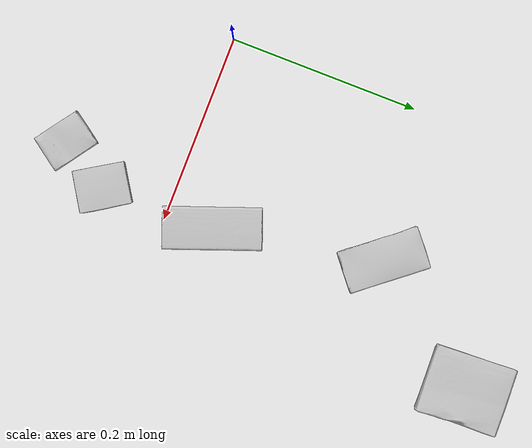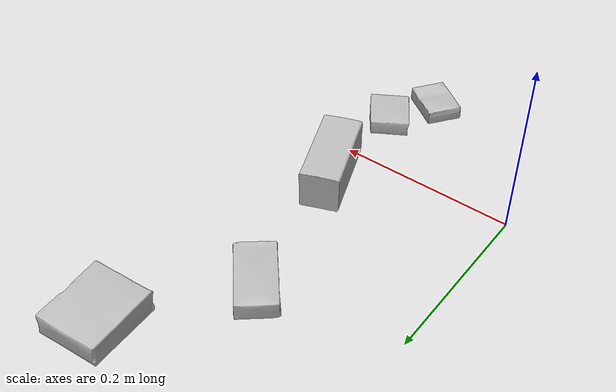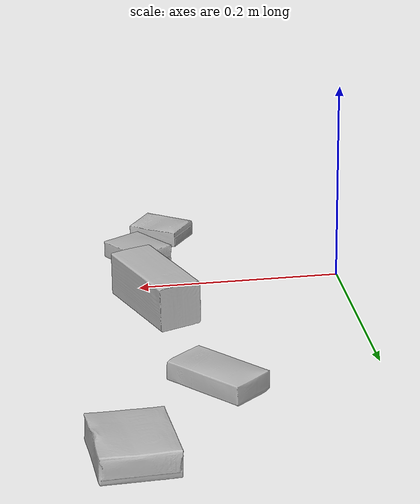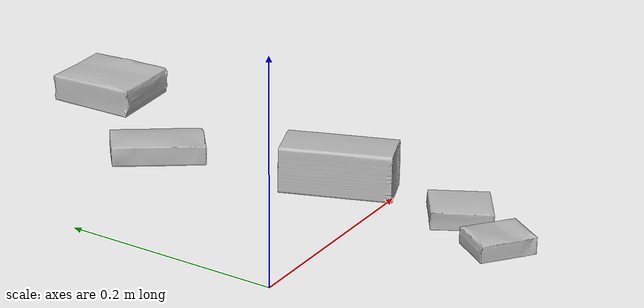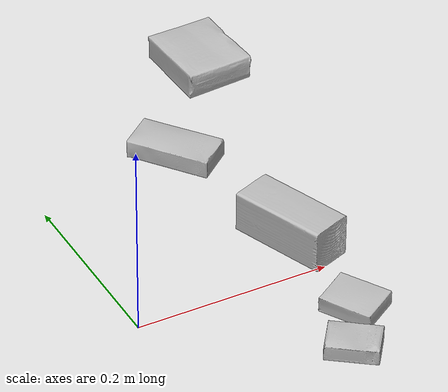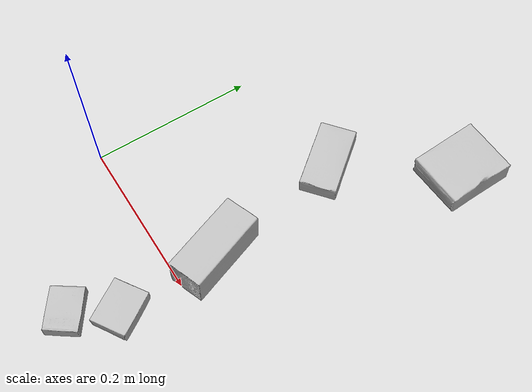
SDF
<sdf version="1.4">
  <world name="default">
    <light name="light1" type="point">
      <pose>0 0 1 0 0 0</pose>
      <diffuse>3 3 3 1</diffuse>
      <specular>3 3 3 1</specular>
    </light>
    <light name="light2" type="point">
      <pose>0 0.5 2 0 0 0</pose>
      <diffuse>1 1 1 1</diffuse>
      <specular>1 1 1 1</specular>
    </light>
    <light name="light3" type="point">
      <pose>0 0.5 2 0 0 0</pose>
      <diffuse>3 3 3 1</diffuse>
      <specular>3 3 3 1</specular>
    </light>
    <scene>
      <ambient>0.7 0.7 0.7</ambient>
    </scene>
    <model name="box1">
      <link name="link_box1">
        <collision name="default">
          <geometry>
            <mesh>
              <uri>model://gelatin_box/collision_meshes/collision.obj</uri>
              <scale>1.0 1.0 1.0</scale>
            </mesh>
          </geometry>
          <surface>
            <friction>
              <ode>
                <mu>0.5</mu>
                <mu2>0.5</mu2>
              </ode>
            </friction>
          <contact>
        <ode>
            <max_vel>0</max_vel>
            <min_depth>0.0001</min_depth>
            <kp>1e8</kp>
        </ode>
    </contact></surface>
        </collision>
        <visual name="default">
          <geometry>
            <mesh>
              <uri>model://gelatin_box/visual_meshes/visual.dae</uri>
              <scale>1.0 1.0 1.0</scale>
            </mesh>
          </geometry>
        </visual>
        <inertial>
          <mass>0.2001359760761261</mass>
          <pose>0.0004319618456065655 0.00011156872642459348 -0.00036403213744051754 -0.0010503718728910522 -0.00475581915504666 0.01644056319729456</pose>
          <inertia>
            <ixx>0.00014127967</ixx>
            <iyy>0.00010091532</iyy>
            <izz>0.00021505913</izz>
            <ixy>0</ixy>
            <ixz>0</ixz>
            <iyz>0</iyz>
          </inertia>
        </inertial>
      </link>
      <pose>0.25131744146347046 0.3534163534641266 0.015168310143053532 0.005597378203026951 -0.007304462127211079 0.034879489842786195</pose>
    </model>
    <model name="box2">
      <link name="link_box2">
        <collision name="default">
          <geometry>
            <mesh>
              <uri>model://cracker_box/collision_meshes/collision.obj</uri>
              <scale>0.25 0.25 0.25</scale>
            </mesh>
          </geometry>
          <surface>
            <friction>
              <ode>
                <mu>0.5</mu>
                <mu2>0.5</mu2>
              </ode>
            </friction>
          <contact>
        <ode>
            <max_vel>0</max_vel>
            <min_depth>0.0001</min_depth>
            <kp>1e8</kp>
        </ode>
    </contact></surface>
        </collision>
        <visual name="default">
          <geometry>
            <mesh>
              <uri>model://cracker_box/visual_meshes/visual.dae</uri>
              <scale>0.25 0.25 0.25</scale>
            </mesh>
          </geometry>
        </visual>
        <inertial>
          <mass>0.052757441997528076</mass>
          <pose>0.00023660421720705926 6.358561950037256e-05 -0.0004257383698131889 -0.0003162076882876523 -0.011106491463043667 0.002546795002652857</pose>
          <inertia>
            <ixx>8.38696e-06</ixx>
            <iyy>1.384852e-05</iyy>
            <izz>1.9763109e-05</izz>
            <ixy>0</ixy>
            <ixz>0</ixz>
            <iyz>0</iyz>
          </inertia>
        </inertial>
      </link>
      <pose>0.16080661118030548 -0.12312044948339462 0.009120452217757702 -0.011787887852072992 -0.007367258226544355 2.5166046004239386</pose>
    </model>
    <model name="box3">
      <link name="link_box3">
        <collision name="default">
          <geometry>
            <mesh>
              <uri>model://wood_block/collision_meshes/collision.obj</uri>
              <scale>0.5 0.5 0.5</scale>
            </mesh>
          </geometry>
          <surface>
            <friction>
              <ode>
                <mu>0.5</mu>
                <mu2>0.5</mu2>
              </ode>
            </friction>
          <contact>
        <ode>
            <max_vel>0</max_vel>
            <min_depth>0.0001</min_depth>
            <kp>1e8</kp>
        </ode>
    </contact></surface>
        </collision>
        <visual name="default">
          <geometry>
            <mesh>
              <uri>model://wood_block/visual_meshes/visual.dae</uri>
              <scale>0.5 0.5 0.5</scale>
            </mesh>
          </geometry>
        </visual>
        <inertial>
          <mass>0.15567830204963684</mass>
          <pose>-2.9066577553749084e-06 -0.000285404734313488 0.00013204292918089777 -0.052210429644919926 -0.005192696852900695 -0.006861378081336091</pose>
          <inertia>
            <ixx>5.2080282e-05</ixx>
            <iyy>0.00016452163</iyy>
            <izz>0.00016390622</izz>
            <ixy>0</ixy>
            <ixz>0</ixz>
            <iyz>0</iyz>
          </inertia>
        </inertial>
      </link>
      <pose>0.19063235819339752 0.05032048001885414 0.022629259154200554 -0.005208418087518591 0.005718761194539579 -1.2150177210024111</pose>
    </model>
    <model name="box4">
      <link name="link_box4">
        <collision name="default">
          <geometry>
            <mesh>
              <uri>model://pudding_box/collision_meshes/collision.obj</uri>
              <scale>0.5 0.5 0.5</scale>
            </mesh>
          </geometry>
          <surface>
            <friction>
              <ode>
                <mu>0.5</mu>
                <mu2>0.5</mu2>
              </ode>
            </friction>
          <contact>
        <ode>
            <max_vel>0</max_vel>
            <min_depth>0.0001</min_depth>
            <kp>1e8</kp>
        </ode>
    </contact></surface>
        </collision>
        <visual name="default">
          <geometry>
            <mesh>
              <uri>model://pudding_box/visual_meshes/visual.dae</uri>
              <scale>0.5 0.5 0.5</scale>
            </mesh>
          </geometry>
        </visual>
        <inertial>
          <mass>0.0498165600001812</mass>
          <pose>0.00024474109522998333 0.00040339428232982755 -0.0002594413817860186 0.00521310227074754 -0.006603796865596143 0.02007982702575369</pose>
          <inertia>
            <ixx>1.4078764e-05</ixx>
            <iyy>9.472293e-06</iyy>
            <izz>2.0790974e-05</izz>
            <ixy>0</ixy>
            <ixz>0</ixz>
            <iyz>0</iyz>
          </inertia>
        </inertial>
      </link>
      <pose>0.19222672283649445 -0.07095342874526978 0.009862905368208885 0.02234847043204785 -0.01139178136564844 0.5606507885866603</pose>
    </model>
    <model name="box5">
      <link name="link_box5">
        <collision name="default">
          <geometry>
            <mesh>
              <uri>model://sugar_box/collision_meshes/collision.obj</uri>
              <scale>0.5 0.5 0.5</scale>
            </mesh>
          </geometry>
          <surface>
            <friction>
              <ode>
                <mu>0.5</mu>
                <mu2>0.5</mu2>
              </ode>
            </friction>
          <contact>
        <ode>
            <max_vel>0</max_vel>
            <min_depth>0.0001</min_depth>
            <kp>1e8</kp>
        </ode>
    </contact></surface>
        </collision>
        <visual name="default">
          <geometry>
            <mesh>
              <uri>model://sugar_box/visual_meshes/visual.dae</uri>
              <scale>0.5 0.5 0.5</scale>
            </mesh>
          </geometry>
        </visual>
        <inertial>
          <mass>0.08508674055337906</mass>
          <pose>0.0005171863595023751 1.924554817378521e-05 -0.00018182402709499002 -0.0004046257768003499 0.0010506634050152445 0.002615378556389427</pose>
          <inertia>
            <ixx>1.7723507e-05</ixx>
            <iyy>5.7286023e-05</iyy>
            <izz>6.85782e-05</izz>
            <ixy>0</ixy>
            <ixz>0</ixz>
            <iyz>0</iyz>
          </inertia>
        </inertial>
      </link>
      <pose>0.1570853441953659 0.22640182077884674 0.01139931008219719 0.0007758293337280651 -0.023433026294860937 2.2481584635745984</pose>
    </model>
  <physics type="ode">
      <max_contacts>50</max_contacts>
      <ode>
        <solver>
          <type>quick</type>
          <iters>75</iters>
        </solver>
        <constraints>
          <contact_max_correcting_vel>0</contact_max_correcting_vel>
          <contact_surface_layer>0</contact_surface_layer>
        </constraints>
      </ode>
    </physics></world>
</sdf>
